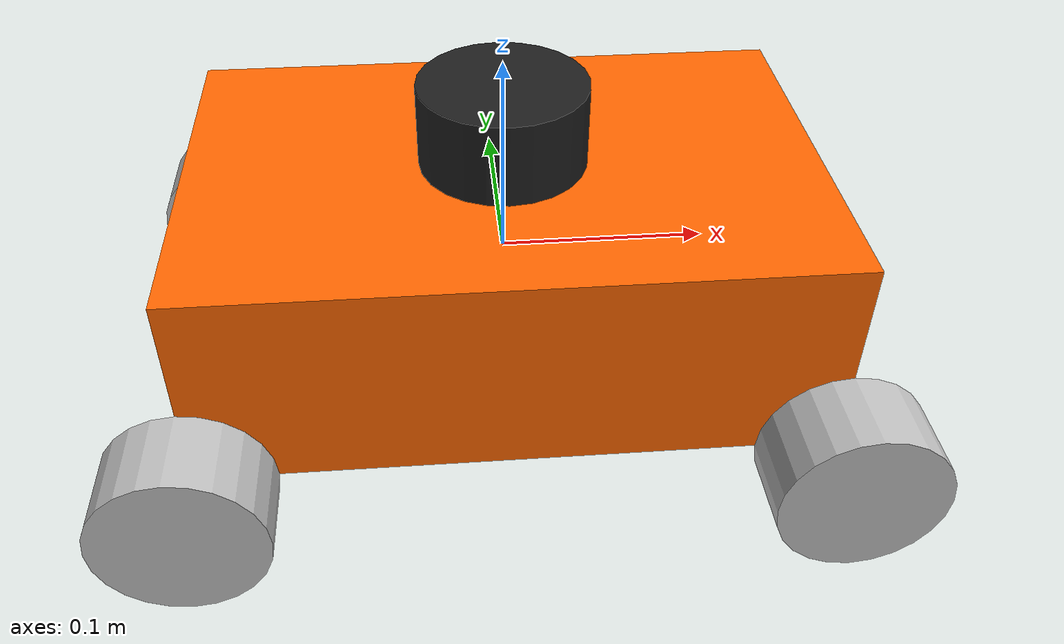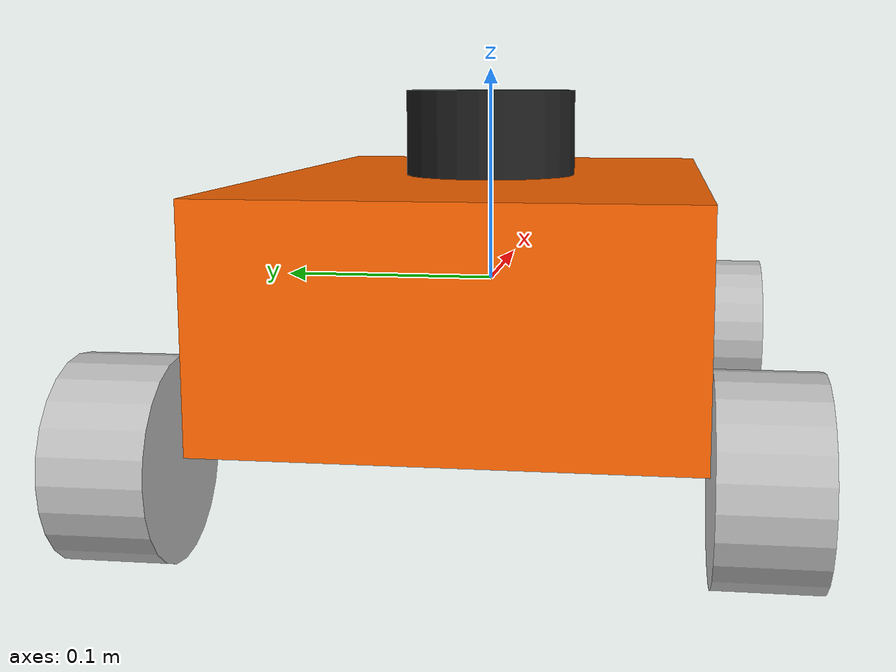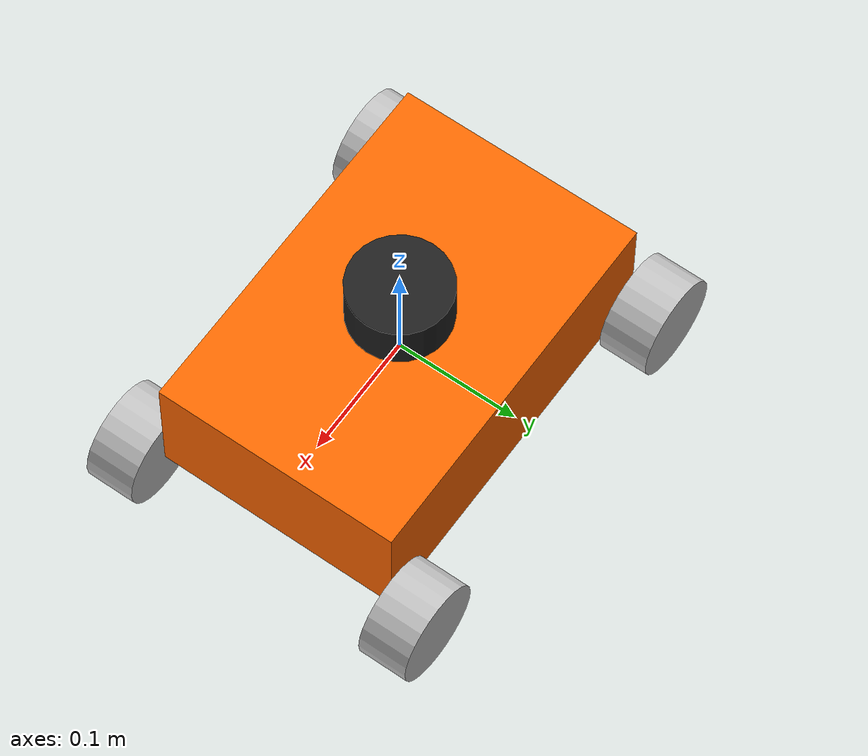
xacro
<?xml version="1.0"?>
<robot name="deeptuuk" xmlns:xacro="http://www.ros.org/wiki/xacro">
    <xacro:include filename="my_robot.xacro"/>
    <xacro:include filename="rplidar.xacro" />

	<xacro:property name="rplidar_offset_x" value="0" />
	<xacro:property name="rplidar_offset_y" value="0" />
	<xacro:property name="rplidar_offset_z" value="0.07" />

	<my_robot/>

	<!-- rplidar -->
	<joint name="rplidar_joint" type="fixed">
		<origin xyz="${rplidar_offset_x} ${rplidar_offset_y} ${rplidar_offset_z}" rpy="0 0 0" />
		<parent link="base_link"/>
		<child link="laser_link"/>
	</joint>
	<rplidar/>

	<gazebo>
		<plugin name="skid_steer_drive_controller" filename="libgazebo_ros_skid_steer_drive.so">
			<updateRate>100.0</updateRate>
			<alwaysOn>true</alwaysOn>
			<covariance_x>0</covariance_x>
			<covariance_y>0</covariance_y>
			<covariance_yaw>0</covariance_yaw>
			<robotNamespace>/</robotNamespace>
			<leftFrontJoint>base_to_wheel_joint_front_left</leftFrontJoint>
			<rightFrontJoint>base_to_wheel_joint_front_righ</rightFrontJoint>
			<leftRearJoint>base_to_wheel_joint_back_left</leftRearJoint>
			<rightRearJoint>base_to_wheel_joint_back_righ</rightRearJoint>
			<wheelSeparation>0.24</wheelSeparation>
			<wheelDiameter>0.08</wheelDiameter>
			<robotBaseFrame>base_link</robotBaseFrame>
			<torque>100</torque>
			<commandTopic>cmd_vel</commandTopic>
			<odometryTopic>odom</odometryTopic>
			<odometryFrame>odom</odometryFrame>
			<broadcastTF>true</broadcastTF>
		</plugin>
	</gazebo>
</robot>

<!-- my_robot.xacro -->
<robot xmlns:xacro="http://www.ros.org/wiki/xacro">

    <xacro:property name="PI" value="3.14159"/>
    <xacro:property name="base_l" value="0.3"/>
    <xacro:property name="base_w" value="0.2"/>
    <xacro:property name="base_h" value="0.1"/>

    <xacro:property name="wheel_l" value="0.04"/>
    <xacro:property name="wheel_r" value="0.04"/>

    <xacro:macro name="base_to_wheel_joint" params="parent number x_loc y_loc z_loc">
        <joint name="base_to_wheel_joint_${number}" type="continuous">
            <origin xyz="${x_loc} ${y_loc} ${z_loc}" rpy="0 0 0" />
            <parent link="${parent}"/>
            <child link="wheel_${number}" />
            <axis xyz="0 1 0"/>
        </joint>

        <link name="wheel_${number}">
            <visual>
                <origin xyz=" 0 0 0" rpy="${PI/2} 0 0" />
                <geometry>
                    <cylinder radius="${wheel_r}" length = "${wheel_l}"/>
                </geometry>
                <material name="gray">
                    <color rgba="0.75 0.75 0.75 1"/>
                </material>
            </visual>

            <inertial>
                <mass value="1" />
                <origin xyz="0 0 0" />
                <inertia ixx="0.00053" ixy="0.00000" ixz="0.00000"
                        iyy="0.00053" iyz="0.00000" izz="0.00080" />
            </inertial>

            <collision>
                <origin xyz="0 0 0" rpy="${PI/2} 0 0" />
                <geometry>
                    <cylinder radius="${wheel_r}" length = "${wheel_l}"/>
                </geometry>
            </collision>
        </link>

        <gazebo reference="wheel_${number}">
            <material>Gazebo/Gray</material>
            <mu1>100</mu1>
            <mu2>100</mu2>
        </gazebo>

        <transmission name="simple_trans_${number}">
            <type>transmission_interface/SimpleTransmission</type>
            <joint name="base_to_wheel_joint_${number}" />
            <actuator name="actuator_${number}">
                <mechanicalReduction>100</mechanicalReduction>
                <hardwareInterface>VelocityJointInterface</hardwareInterface>
            </actuator>
        </transmission>
    </xacro:macro>

    <xacro:macro name="my_robot">
        <link name="base_link">
            <visual>
                <origin xyz=" 0 0 0" rpy="0 0 0" />
                <geometry>
                    <box size="${base_l} ${base_w} ${base_h}" />
                </geometry>
                <material name="yellow">
                    <color rgba="1 0.4 0 1"/>
                </material>
            </visual>

            <inertial>
                <mass value="5" />
                <origin xyz="0 0 0" />
                <inertia ixx="0.02083" ixy="0.00000" ixz="0.00000"
                        iyy="0.04166" iyz="0.00000" izz="0.05416" />
            </inertial>

            <collision>
                <origin xyz="0 0 0" rpy="0 0 0" />
                <geometry>
                    <box size="${base_l} ${base_w} ${base_h}" />
                </geometry>
            </collision>
        </link>

        <gazebo reference="base_link">
            <material>Gazebo/Yellow</material>
        </gazebo>

        <base_to_wheel_joint parent="base_link" number="front_left" x_loc="${base_l/2}" y_loc="${base_w/2 + wheel_l/2}" z_loc="${-base_h/2}"/>
        <base_to_wheel_joint parent="base_link" number="front_righ" x_loc="${base_l/2}" y_loc="${-base_w/2 - wheel_l/2}" z_loc="${-base_h/2}"/>
        <base_to_wheel_joint parent="base_link" number="back_left" x_loc="${-base_l/2}" y_loc="${base_w/2 + wheel_l/2}" z_loc="${-base_h/2}"/>
        <base_to_wheel_joint parent="base_link" number="back_righ" x_loc="${-base_l/2}" y_loc="${-base_w/2 - wheel_l/2}" z_loc="${-base_h/2}"/>

    </xacro:macro>
</robot>

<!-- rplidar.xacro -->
<robot xmlns:xacro="http://www.ros.org/wiki/xacro" name="laser">

	<xacro:macro name="rplidar">
		<link name="laser_link">
			<inertial>
				<mass value="0.1" />
				<origin xyz="0 0 0" />
				<inertia ixx="0.01" ixy="0.0" ixz="0.0"
						 iyy="0.01" iyz="0.0"
						 izz="0.01" />
			</inertial>

			<visual>
				<origin xyz=" 0 0 0 " rpy="0 0 0" />
				<geometry>
					<cylinder length="0.04" radius="0.04"/>
				</geometry>
				<material name="black"/>
			</visual>

			<collision>
				<origin xyz="0.0 0.0 0.0" rpy="0 0 0" />
				<geometry>
					<cylinder length="0.04" radius="0.04"/>
				</geometry>
			</collision>
		</link>

		<gazebo reference="laser_link">
			<material>Gazebo/Black</material>
		</gazebo>
	</xacro:macro>

</robot>
